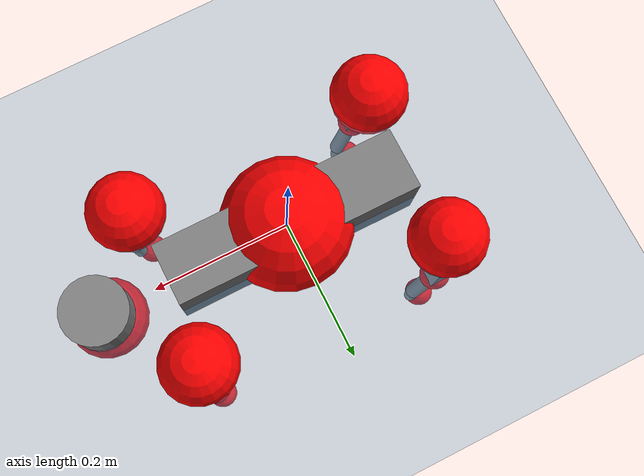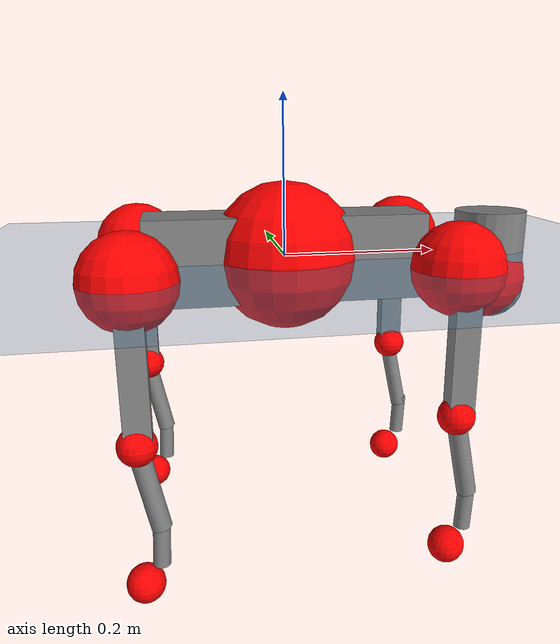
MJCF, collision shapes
<mujoco model="go2">
  <compiler angle="radian" assetdir="assets" balanceinertia="true" inertiafromgeom="false"/>

  <option timestep="0.005" density="1.2" viscosity="2e-05"/>

  <size nkey="1"/>

  <visual>
    <quality shadowsize="8192"/>
    <map shadowclip="0.5"/>
  </visual>

  <default>
    <default class="/">
      <geom contype="0" conaffinity="0" group="1" solref="-1000 -80"/>
      <site size="0.01 0.005 0.005" group="5"/>
      <general forcelimited="true" biastype="affine" gainprm="20" biasprm="0 -20 -0.5"/>
      <default class="go2">
        <joint armature="0.01" damping="0.01" frictionloss="0.2"/>
        <geom condim="1" margin="0.001"/>
        <default class="visual">
          <geom type="mesh" group="2"/>
        </default>
        <default class="collision">
          <geom group="3"/>
          <default class="foot">
            <geom size="0.022 0 0" condim="6" priority="1" friction="0.8 0.02 0.01" solimp="0.015 1 0.022"/>
          </default>
        </default>
        <default class="reward_collision_sphere">
          <geom group="5" rgba="1 0 0 1"/>
        </default>
      </default>
    </default>
  </default>

  <asset>
    <texture type="skybox" colorspace="auto" name="//unnamed_texture_0" builtin="gradient" rgb1="0.95 0.95 0.95" rgb2="0.95 0.95 0.95" width="100" height="600"/>
    <texture type="2d" colorspace="auto" name="texplane" builtin="checker" rgb1="0.345 0.575 0.748" rgb2="0.345 0.575 0.748" markrgb="1 1 1" width="512" height="512"/>
    <material name="MatPlane" class="/" texture="texplane" texuniform="true" texrepeat="2 2" specular="0.9"/>
    <material name="metal" class="/" rgba="0.9 0.95 0.95 1"/>
    <material name="black" class="/" rgba="0 0 0 1"/>
    <material name="white" class="/"/>
    <material name="gray" class="/" rgba="0.671705 0.692426 0.77427 1"/>
    <mesh name="base_0" class="/" file="base_0.obj"/>
    <mesh name="base_1" class="/" file="base_1.obj"/>
    <mesh name="base_2" class="/" file="base_2.obj"/>
    <mesh name="base_3" class="/" file="base_3.obj"/>
    <mesh name="base_4" class="/" file="base_4.obj"/>
    <mesh name="hip_0" class="/" file="hip_0.obj"/>
    <mesh name="hip_1" class="/" file="hip_1.obj"/>
    <mesh name="thigh_0" class="/" file="thigh_0.obj"/>
    <mesh name="thigh_1" class="/" file="thigh_1.obj"/>
    <mesh name="thigh_mirror_0" class="/" file="thigh_mirror_0.obj"/>
    <mesh name="thigh_mirror_1" class="/" file="thigh_mirror_1.obj"/>
    <mesh name="calf_0" class="/" file="calf_0.obj"/>
    <mesh name="calf_1" class="/" file="calf_1.obj"/>
    <mesh name="calf_mirror_0" class="/" file="calf_mirror_0.obj"/>
    <mesh name="calf_mirror_1" class="/" file="calf_mirror_1.obj"/>
    <mesh name="foot" class="/" file="foot.obj"/>
  </asset>

  <worldbody>
    <geom name="floor" class="/" size="100 100 0.125" type="plane" group="0" material="MatPlane"/>
    <light name="toplight_shadow" class="/" pos="0 0 5" dir="0.0990148 0.0990148 -0.990148" type="directional" ambient="0.04 0.04 0.04" diffuse="0.55 0.55 0.55" specular="0.12 0.12 0.12"/>
    <light name="toplight_fill" class="/" pos="0 0 5" dir="0.0990148 0.0990148 -0.990148" type="directional" castshadow="false" ambient="0.04 0.04 0.04" diffuse="0.3 0.3 0.3" specular="0.08 0.08 0.08"/>
    <body name="trunk" childclass="go2" pos="9.60343e-07 -0.00154913 0.000513159" quat="1 1.1073e-05 -2.26478e-05 6.45284e-06">
      <inertial pos="0.0197432 -0.00194847 -0.0047182" quat="0.00101036 0.720819 -0.00912127 0.693063" mass="5.78163" diaginertia="0.099528 0.0943346 0.0113456"/>
      <joint name="//unnamed_joint_0" type="free" armature="0" damping="0" frictionloss="0"/>
      <geom name="//unnamed_geom_1" class="visual" material="black" mesh="base_0"/>
      <geom name="//unnamed_geom_2" class="visual" material="black" mesh="base_1"/>
      <geom name="//unnamed_geom_3" class="visual" material="black" mesh="base_2"/>
      <geom name="//unnamed_geom_4" class="visual" material="white" mesh="base_3"/>
      <geom name="//unnamed_geom_5" class="visual" material="gray" mesh="base_4"/>
      <geom name="trunk_1" class="collision" size="0.177838 0.0441995 0.0538903" type="box"/>
      <geom name="trunk_2" class="collision" size="0.0472722 0.042545" pos="0.280676 0 0.00858386" type="cylinder"/>
      <geom name="trunk_3" class="collision" size="0.0444359" pos="0.288555 0 -0.0515031"/>
      <geom name="//unnamed_geom_9" class="reward_collision_sphere" size="0.0945444"/>
      <geom name="//unnamed_geom_10" class="reward_collision_sphere" size="0.0567266" pos="0.275752 0 -0.0386274"/>
      <site name="imu" pos="-0.0182145 0.000622979 0.0286177" size="0.00945444"/>
      <camera name="track" pos="0 -1.98623 0" quat="0.707107 0.707107 0 0" mode="trackcom"/>
      <camera name="ego_camera" pos="0.307267 0 0.0386274" quat="-0.5 -0.5 0.5 0.5"/>
      <body name="FL_hip" pos="0.190714 0.0488334 0.00297612" quat="1 2.13267e-05 0.00068642 0.000453508">
        <inertial pos="-0.00511806 0.00213295 -2.95631e-05" quat="0.49863 0.49809 0.505435 0.497805" mass="0.562583" diaginertia="0.000817965 0.000562277 0.000225084"/>
        <joint name="FL_hip_joint" pos="0 0 0" axis="1 0.000797839 0.000436857" stiffness="0.0144449" range="-0.996971 1.04495" armature="0.0091834" damping="0" frictionloss="0.197213"/>
        <geom name="//unnamed_geom_11" class="visual" material="metal" mesh="hip_0"/>
        <geom name="//unnamed_geom_12" class="visual" material="gray" mesh="hip_1"/>
        <geom name="//unnamed_geom_13" class="collision" size="0.0434904 0.0189089" pos="0 0.0794493 0" quat="0.707107 0.707107 0 0" type="cylinder"/>
        <geom name="//unnamed_geom_14" class="reward_collision_sphere" size="0.0567266" pos="0 0.0695182 0"/>
        <body name="FL_thigh" pos="-0.00021152 0.0971935 0.00222603" quat="1 -8.44347e-05 -0.00039428 -0.000467932">
          <inertial pos="-0.0027765 -0.021625 -0.0282629" quat="0.831224 0.0810243 -0.029406 0.549214" mass="0.974257" diaginertia="0.00557229 0.00566751 0.000417045"/>
          <joint name="FL_thigh_joint" pos="0 0 0" axis="0.0142358 0.999898 0.00142134" stiffness="0.00698635" range="-1.57546 3.54042" armature="0.0103124" damping="0.00438778" frictionloss="0.179941"/>
          <geom name="//unnamed_geom_15" class="visual" material="metal" mesh="thigh_0"/>
          <geom name="//unnamed_geom_16" class="visual" material="gray" mesh="thigh_1"/>
          <geom name="//unnamed_geom_17" class="collision" size="0.10069 0.0115817 0.0160725" pos="0 0 -0.0914181" quat="0.707107 0 0.707107 0" type="box"/>
          <body name="FL_calf" pos="0.000764518 -0.00303594 -0.182136" quat="1 5.74457e-06 1.75345e-05 1.77424e-05">
            <inertial pos="0.00703537 -0.00066355 -0.123547" quat="0.710645 0.00170845 -0.0046493 0.703533" mass="0.20321" diaginertia="0.00135414 0.00145633 2.3959e-05"/>
            <joint name="FL_calf_joint" pos="0 0 0" axis="0.00660677 0.999975 0.00269884" stiffness="0.000346705" range="-2.77421 -0.844047" armature="0.00922729" damping="0.00316047" frictionloss="0.188738"/>
            <geom name="//unnamed_geom_18" class="visual" material="gray" mesh="calf_0"/>
            <geom name="//unnamed_geom_19" class="visual" material="black" mesh="calf_1"/>
            <geom name="FL_calf0" class="collision" size="0.0113453 0.0567266" pos="0.00787864 0 -0.0515031" quat="0.994493 0 -0.104807 0" type="cylinder"/>
            <geom name="//unnamed_geom_21" class="collision" size="0.0103999 0.0307269" pos="0.0196966 0 -0.127041" quat="0.999688 0 0.0249974 0" type="cylinder"/>
            <geom name="//unnamed_geom_22" class="visual" pos="0 0 -0.182836" quat="1 0 0 0" material="black" mesh="foot"/>
            <geom name="FL_foot" class="foot" size="0.0171432" pos="-0.00196966 0 -0.182836"/>
            <geom name="//unnamed_geom_24" class="reward_collision_sphere" size="0.0236361"/>
            <geom name="//unnamed_geom_25" class="reward_collision_sphere" size="0.0236361" pos="-0.00196966 0 -0.182836"/>
            <site name="FL_foot" class="foot" pos="-0.00196966 0 -0.182836" size="0.00945444"/>
          </body>
        </body>
      </body>
      <body name="FR_hip" pos="0.19012 -0.0465597 -0.00166423" quat="1 0.00011575 0.000184197 6.93049e-05">
        <inertial pos="-0.00416187 -0.00199301 -0.00143783" quat="0.498687 0.504463 0.501111 0.495698" mass="0.561411" diaginertia="0.000835345 0.000560747 0.00022997"/>
        <joint name="FR_hip_joint" pos="0 0 0" axis="0.999996 -0.00257059 -0.00085144" stiffness="0.00456559" range="-1.05008 1.03715" armature="0.0089255" damping="0.0153835" frictionloss="0.179618"/>
        <geom name="//unnamed_geom_26" class="visual" pos="0 1.17372e-09 5.03432e-08" quat="4.63268e-05 1 0 0" material="metal" mesh="hip_0"/>
        <geom name="//unnamed_geom_27" class="visual" pos="0 1.90274e-09 -1.24518e-07" quat="4.63268e-05 1 0 0" material="gray" mesh="hip_1"/>
        <geom name="//unnamed_geom_28" class="collision" size="0.0434904 0.0189089" pos="0 -0.0794493 0" quat="0.707107 0.707107 0 0" type="cylinder"/>
        <geom name="//unnamed_geom_29" class="reward_collision_sphere" size="0.0567266" pos="0 -0.0695182 0"/>
        <body name="FR_thigh" pos="0.0029119 -0.0925679 0.00276208" quat="1 5.30003e-05 -9.28887e-05 -0.000162138">
          <inertial pos="-0.00243268 0.0196466 -0.028451" quat="0.550338 -0.020661 0.0840874 0.83044" mass="1.01051" diaginertia="0.00568122 0.00578419 0.000423987"/>
          <joint name="FR_thigh_joint" pos="0 0 0" axis="8.85533e-06 -0.999999 0.00155898" stiffness="0.0039268" range="-3.54025 1.56856" armature="0.0096635" damping="0.00987567" frictionloss="0.189385"/>
          <geom name="//unnamed_geom_30" class="visual" material="metal" mesh="thigh_mirror_0"/>
          <geom name="//unnamed_geom_31" class="visual" material="gray" mesh="thigh_mirror_1"/>
          <geom name="//unnamed_geom_32" class="collision" size="0.10069 0.0115817 0.0160725" pos="0 0 -0.0914181" quat="0.707107 0 0.707107 0" type="box"/>
          <body name="FR_calf" pos="-0.00250594 0.000134212 -0.183273" quat="0.999999 -0.000500334 0.000758811 -0.000532311">
            <inertial pos="0.00540947 0.000743214 -0.12087" quat="0.703264 -0.00391876 -0.000610289 0.710918" mass="0.205372" diaginertia="0.0013676 0.0014183 2.4446e-05"/>
            <joint name="FR_calf_joint" pos="0 0 0" axis="-0.0108155 -0.999918 -0.00684007" range="0.832681 2.72926" armature="0.0105484" damping="0.022105" frictionloss="0.170015"/>
            <geom name="//unnamed_geom_33" class="visual" material="gray" mesh="calf_mirror_0"/>
            <geom name="//unnamed_geom_34" class="visual" material="black" mesh="calf_mirror_1"/>
            <geom name="FR_calf0" class="collision" size="0.0122908 0.0567266" pos="0.0098483 0 -0.0515031" quat="0.995004 0 -0.0998334 0" type="cylinder"/>
            <geom name="//unnamed_geom_36" class="collision" size="0.0103999 0.0307269" pos="0.0196966 0 -0.127041" quat="0.999688 0 0.0249974 0" type="cylinder"/>
            <geom name="//unnamed_geom_37" class="visual" pos="0 0 -0.182836" quat="1 0 0 0" material="black" mesh="foot"/>
            <geom name="FR_foot" class="foot" size="0.0212209" pos="-0.00196966 0 -0.182836"/>
            <geom name="//unnamed_geom_39" class="reward_collision_sphere" size="0.0236361"/>
            <geom name="//unnamed_geom_40" class="reward_collision_sphere" size="0.0236361" pos="-0.00196966 0 -0.182836"/>
            <site name="FR_foot" class="foot" pos="-0.00196966 0 -0.182836" size="0.00945444"/>
          </body>
        </body>
      </body>
      <body name="RL_hip" pos="-0.190122 0.0467773 0.000446676" quat="1 4.61185e-05 0.000114136 -6.44242e-05">
        <inertial pos="0.00542756 0.000464266 0.000303889" quat="0.506303 0.495095 0.500781 0.497752" mass="0.560154" diaginertia="0.000813489 0.000569759 0.000222047"/>
        <joint name="RL_hip_joint" pos="0 0 0" axis="-0.999952 0.000723974 0.0097612" stiffness="0.00481679" range="-1.06322 1.05929" armature="0.00956968" damping="0.0111429" frictionloss="0.183776"/>
        <geom name="//unnamed_geom_41" class="visual" pos="-1.10153e-09 0 -2.15925e-07" quat="4.63268e-05 0 1 0" material="metal" mesh="hip_0"/>
        <geom name="//unnamed_geom_42" class="visual" pos="-1.78571e-09 0 -1.91494e-07" quat="4.63268e-05 0 1 0" material="gray" mesh="hip_1"/>
        <geom name="//unnamed_geom_43" class="collision" size="0.0434904 0.0189089" pos="0 0.0794493 0" quat="0.707107 0.707107 0 0" type="cylinder"/>
        <geom name="//unnamed_geom_44" class="reward_collision_sphere" size="0.0567266" pos="0 0.0695182 0"/>
        <body name="RL_thigh" pos="-0.000522715 0.0948322 -0.00181681" quat="1 5.41756e-05 -0.000270086 0.000139326">
          <inertial pos="-0.00335124 -0.0224989 -0.030594" quat="0.82957 0.0837407 -0.0203574 0.551712" mass="0.993289" diaginertia="0.00551242 0.00552273 0.000402081"/>
          <joint name="RL_thigh_joint" pos="0 0 0" axis="-0.00526425 0.999976 -0.00440554" stiffness="0.00048409" range="-0.552576 4.54436" armature="0.00983851" damping="0" frictionloss="0.184341"/>
          <geom name="//unnamed_geom_45" class="visual" material="metal" mesh="thigh_0"/>
          <geom name="//unnamed_geom_46" class="visual" material="gray" mesh="thigh_1"/>
          <geom name="//unnamed_geom_47" class="collision" size="0.10069 0.0115817 0.0160725" pos="0 0 -0.0914181" quat="0.707107 0 0.707107 0" type="box"/>
          <body name="RL_calf" pos="-0.000651175 -0.00318637 -0.183805" quat="1 -0.000216424 0.000250862 0.000374229">
            <inertial pos="0.00564061 -0.000776193 -0.121328" quat="0.711863 0.000834169 -0.00584071 0.702293" mass="0.20601" diaginertia="0.0014235 0.00141198 2.488e-05"/>
            <joint name="RL_calf_joint" pos="0 0 0" axis="0.00450614 0.999986 0.00282685" range="-2.66999 -0.865515" armature="0.00951075" damping="0.00651141" frictionloss="0.192128"/>
            <geom name="//unnamed_geom_48" class="visual" material="gray" mesh="calf_0"/>
            <geom name="//unnamed_geom_49" class="visual" material="black" mesh="calf_1"/>
            <geom name="RL_calf0" class="collision" size="0.0122908 0.0567266" pos="0.0098483 0 -0.0515031" quat="0.995004 0 -0.0998334 0" type="cylinder"/>
            <geom name="//unnamed_geom_51" class="collision" size="0.0103999 0.0307269" pos="0.0196966 0 -0.127041" quat="0.999688 0 0.0249974 0" type="cylinder"/>
            <geom name="//unnamed_geom_52" class="visual" pos="0 0 -0.182836" quat="1 0 0 0" material="black" mesh="foot"/>
            <geom name="RL_foot" class="foot" size="0.0173872" pos="-0.00196966 0 -0.182836"/>
            <geom name="//unnamed_geom_54" class="reward_collision_sphere" size="0.0236361"/>
            <geom name="//unnamed_geom_55" class="reward_collision_sphere" size="0.0236361" pos="-0.00196966 0 -0.182836"/>
            <site name="RL_foot" class="foot" pos="-0.00196966 0 -0.182836" size="0.00945444"/>
          </body>
        </body>
      </body>
      <body name="RR_hip" pos="-0.19097 -0.0472976 -0.00214208" quat="1 -9.40017e-05 0.00075018 0.000547552">
        <inertial pos="0.00448859 0.000120363 -0.000698846" quat="0.502705 0.494866 0.496395 0.505951" mass="0.576661" diaginertia="0.000835125 0.000570102 0.000230812"/>
        <joint name="RR_hip_joint" pos="0 0 0" axis="-0.999944 0.00959508 -0.00452588" range="-1.0515 1.00132" armature="0.00943757" damping="0.00507925" frictionloss="0.192965"/>
        <geom name="//unnamed_geom_56" class="visual" pos="1.10181e-09 1.17372e-09 -2.66268e-07" quat="2.14617e-09 4.63268e-05 4.63268e-05 -1" material="metal" mesh="hip_0"/>
        <geom name="//unnamed_geom_57" class="visual" pos="1.785e-09 1.90274e-09 -6.69763e-08" quat="2.14617e-09 4.63268e-05 4.63268e-05 -1" material="gray" mesh="hip_1"/>
        <geom name="//unnamed_geom_58" class="collision" size="0.0434904 0.0189089" pos="0 -0.0794493 0" quat="0.707107 0.707107 0 0" type="cylinder"/>
        <geom name="//unnamed_geom_59" class="reward_collision_sphere" size="0.0567266" pos="0 -0.0695182 0"/>
        <body name="RR_thigh" pos="0.000112753 -0.0935727 5.47688e-05" quat="0.999999 0.000567896 0.000791309 0.000431118">
          <inertial pos="-0.00330614 0.0199166 -0.0276968" quat="0.548788 -0.0213465 0.0845293 0.831403" mass="0.974388" diaginertia="0.00552597 0.00562819 0.000408243"/>
          <joint name="RR_thigh_joint" pos="0 0 0" axis="-0.00100954 -0.999963 0.00855004" range="-4.53901 0.527638" armature="0.00920144" damping="0.0194865" frictionloss="0.185381"/>
          <geom name="//unnamed_geom_60" class="visual" material="metal" mesh="thigh_mirror_0"/>
          <geom name="//unnamed_geom_61" class="visual" material="gray" mesh="thigh_mirror_1"/>
          <geom name="//unnamed_geom_62" class="collision" size="0.10069 0.0115817 0.0160725" pos="0 0 -0.0914181" quat="0.707107 0 0.707107 0" type="box"/>
          <body name="RR_calf" pos="-0.00201656 -0.000911449 -0.183859" quat="1 -0.000142669 -0.000115699 4.08215e-05">
            <inertial pos="0.00855242 0.000601289 -0.12073" quat="0.702796 -0.000837816 -0.00103082 0.71139" mass="0.201763" diaginertia="0.00141495 0.00142637 2.44717e-05"/>
            <joint name="RR_calf_joint" pos="0 0 0" axis="-0.00752273 -0.999952 0.00620906" range="0.803153 2.77468" armature="0.00838883" damping="0.00707147" frictionloss="0.186012"/>
            <geom name="//unnamed_geom_63" class="visual" material="gray" mesh="calf_mirror_0"/>
            <geom name="//unnamed_geom_64" class="visual" material="black" mesh="calf_mirror_1"/>
            <geom name="RR_calf0" class="collision" size="0.0122908 0.0567266" pos="0.0098483 0 -0.0515031" quat="0.995004 0 -0.0998334 0" type="cylinder"/>
            <geom name="//unnamed_geom_66" class="collision" size="0.0103999 0.0307269" pos="0.0196966 0 -0.127041" quat="0.999688 0 0.0249974 0" type="cylinder"/>
            <geom name="//unnamed_geom_67" class="visual" pos="0 0 -0.182836" quat="1 0 0 0" material="black" mesh="foot"/>
            <geom name="RR_foot" class="foot" size="0.0198568" pos="-0.00196966 0 -0.182836"/>
            <geom name="//unnamed_geom_69" class="reward_collision_sphere" size="0.0236361"/>
            <geom name="//unnamed_geom_70" class="reward_collision_sphere" size="0.0236361" pos="-0.00196966 0 -0.182836"/>
            <site name="RR_foot" class="foot" pos="-0.00196966 0 -0.182836" size="0.00945444"/>
          </body>
        </body>
      </body>
    </body>
  </worldbody>

  <contact>
    <pair class="/" geom1="floor" geom2="FL_foot" name="//unnamed_contact_0"/>
    <pair class="/" geom1="floor" geom2="FR_foot" name="//unnamed_contact_1"/>
    <pair class="/" geom1="floor" geom2="RL_foot" name="//unnamed_contact_2"/>
    <pair class="/" geom1="floor" geom2="RR_foot" name="//unnamed_contact_3"/>
  </contact>

  <actuator>
    <general name="FL_hip" class="/" joint="FL_hip_joint" forcerange="-24.5613 24.5613" gainprm="20.1562" biasprm="0 -20.1562 -0.460765"/>
    <general name="FL_thigh" class="/" joint="FL_thigh_joint" forcerange="-21.9028 21.9028" gainprm="20.1562" biasprm="0 -20.1562 -0.460765"/>
    <general name="FL_calf" class="/" joint="FL_calf_joint" forcerange="-44.4697 44.4697" gainprm="20.1562" biasprm="0 -20.1562 -0.460765"/>
    <general name="FR_hip" class="/" joint="FR_hip_joint" forcerange="-24.4042 24.4042" gainprm="20.1562" biasprm="0 -20.1562 -0.460765"/>
    <general name="FR_thigh" class="/" joint="FR_thigh_joint" forcerange="-24.4139 24.4139" gainprm="20.1562" biasprm="0 -20.1562 -0.460765"/>
    <general name="FR_calf" class="/" joint="FR_calf_joint" forcerange="-44.2163 44.2163" gainprm="20.1562" biasprm="0 -20.1562 -0.460765"/>
    <general name="RL_hip" class="/" joint="RL_hip_joint" forcerange="-23.1086 23.1086" gainprm="20.1562" biasprm="0 -20.1562 -0.460765"/>
    <general name="RL_thigh" class="/" joint="RL_thigh_joint" forcerange="-22.393 22.393" gainprm="20.1562" biasprm="0 -20.1562 -0.460765"/>
    <general name="RL_calf" class="/" joint="RL_calf_joint" forcerange="-42.7754 42.7754" gainprm="20.1562" biasprm="0 -20.1562 -0.460765"/>
    <general name="RR_hip" class="/" joint="RR_hip_joint" forcerange="-20.2844 20.2844" gainprm="20.1562" biasprm="0 -20.1562 -0.460765"/>
    <general name="RR_thigh" class="/" joint="RR_thigh_joint" forcerange="-22.2959 22.2959" gainprm="20.1562" biasprm="0 -20.1562 -0.460765"/>
    <general name="RR_calf" class="/" joint="RR_calf_joint" forcerange="-42.6689 42.6689" gainprm="20.1562" biasprm="0 -20.1562 -0.460765"/>
  </actuator>

  <sensor>
    <gyro site="imu" name="imu_angular_velocity"/>
    <velocimeter site="imu" name="imu_linear_velocity"/>
    <framelinvel objtype="site" objname="FL_foot" name="FL_foot_global_linear_velocity"/>
    <framelinvel objtype="site" objname="FR_foot" name="FR_foot_global_linear_velocity"/>
    <framelinvel objtype="site" objname="RL_foot" name="RL_foot_global_linear_velocity"/>
    <framelinvel objtype="site" objname="RR_foot" name="RR_foot_global_linear_velocity"/>
  </sensor>

  <keyframe>
    <key name="home" qpos="0 0 0.325 1 0 0 0 0.1 0.8 -1.5 -0.1 -0.8 1.5 -0.1 0.8 -1.5 0.1 -0.8 1.5"/>
  </keyframe>
</mujoco>
